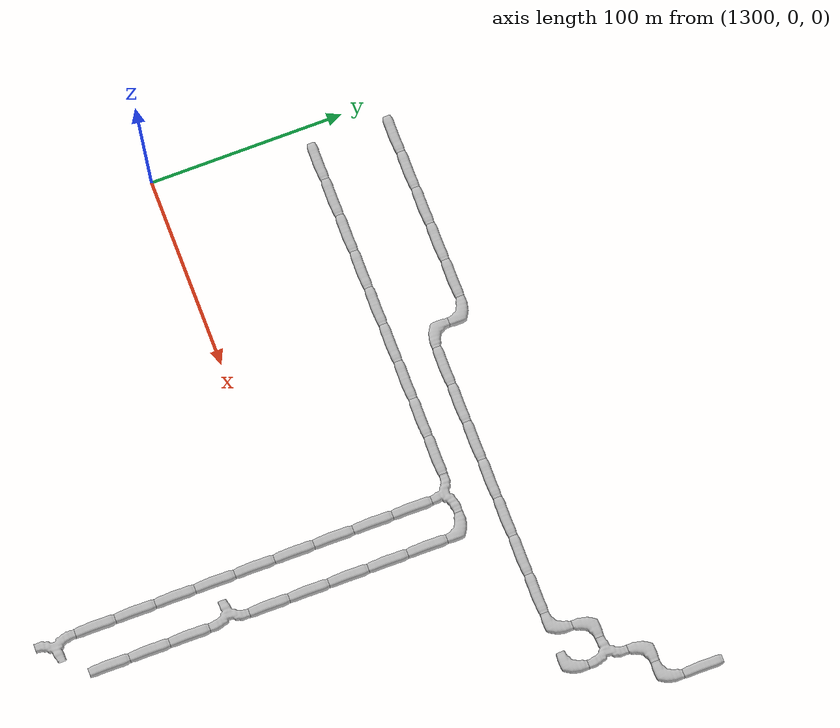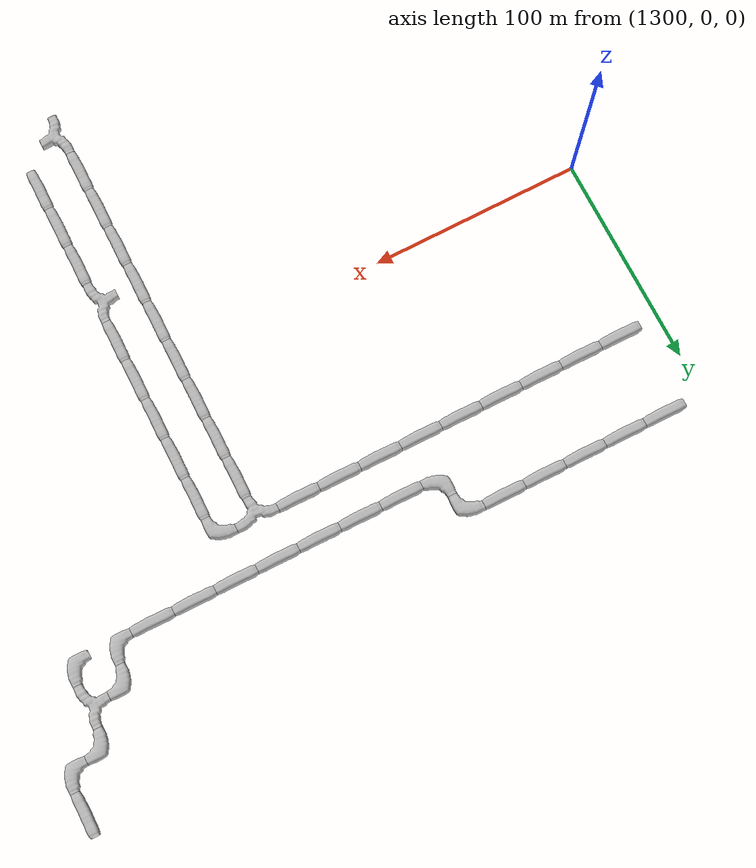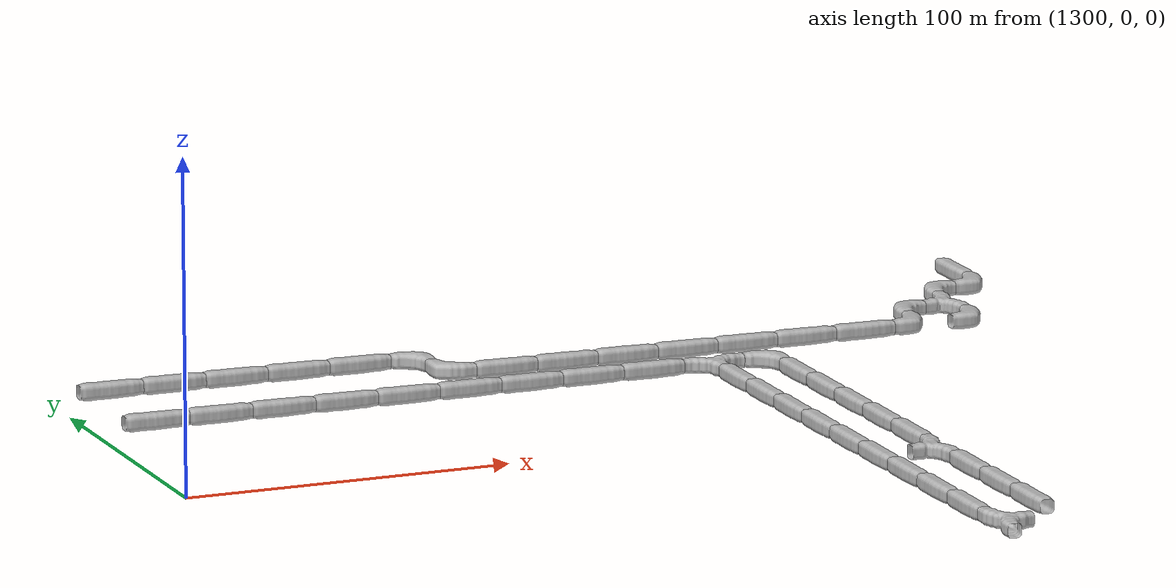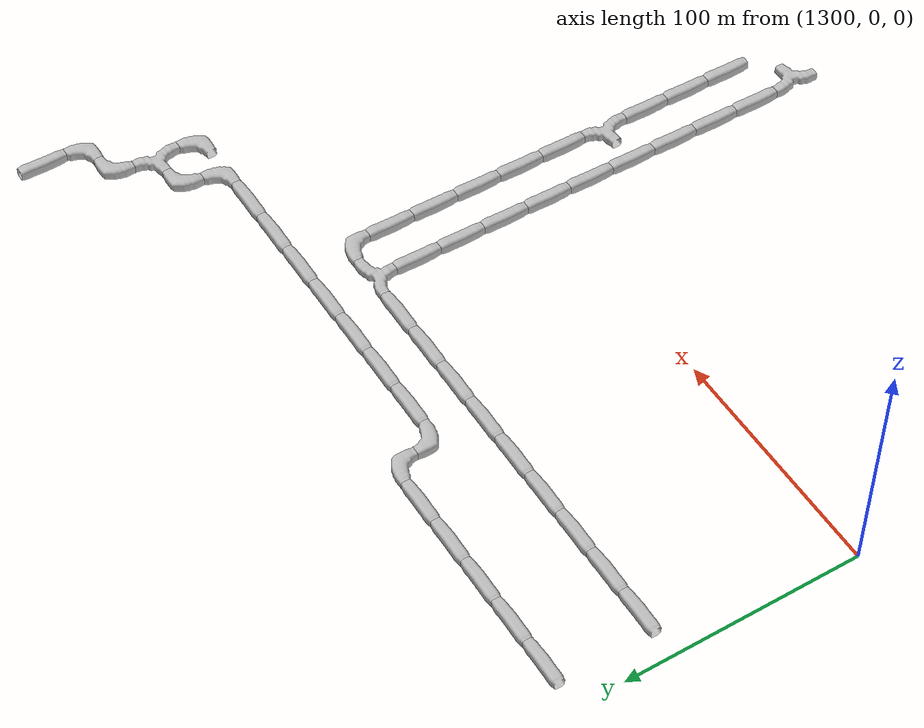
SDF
<sdf version="1.6">
 <world name="cave_8000_2">
  <include>
   <static>true</static>
   <name>cave_66_4</name>
   <pose>1320 80 0 0 0 1.5707963267948966</pose>
   <uri>model://cave_straight_20m</uri>
  </include>
  <include>
   <static>true</static>
   <name>cave_67_4</name>
   <pose>1340 80 0 0 0 1.5707963267948966</pose>
   <uri>model://cave_straight_20m</uri>
  </include>
  <include>
   <static>true</static>
   <name>cave_68_4</name>
   <pose>1360 80 0 0 0 1.5707963267948966</pose>
   <uri>model://cave_straight_20m</uri>
  </include>
  <include>
   <static>true</static>
   <name>cave_69_4</name>
   <pose>1380 80 0 0 0 1.5707963267948966</pose>
   <uri>model://cave_straight_20m</uri>
  </include>
  <include>
   <static>true</static>
   <name>cave_70_4</name>
   <pose>1400 80 0 0 0 1.5707963267948966</pose>
   <uri>model://cave_straight_20m</uri>
  </include>
  <include>
   <static>true</static>
   <name>cave_71_4</name>
   <pose>1420 80 0 0 0 1.5707963267948966</pose>
   <uri>model://cave_straight_20m</uri>
  </include>
  <include>
   <static>true</static>
   <name>cave_72_4</name>
   <pose>1440 80 0 0 0 1.5707963267948966</pose>
   <uri>model://cave_straight_20m</uri>
  </include>
  <include>
   <static>true</static>
   <name>cave_73_4</name>
   <pose>1460 80 0 0 0 1.5707963267948966</pose>
   <uri>model://cave_straight_20m</uri>
  </include>
  <include>
   <static>true</static>
   <name>cave_74_4</name>
   <pose>1480 80 0 0 0 1.5707963267948966</pose>
   <uri>model://cave_straight_20m</uri>
  </include>
  <include>
   <static>true</static>
   <name>cave_75_4</name>
   <pose>1500 80 0 0 0 3.141592653589793</pose>
   <uri>model://cave_3way_20m</uri>
  </include>
  <include>
   <static>true</static>
   <name>cave_76_4</name>
   <pose>1520 80 0 0 0 3.141592653589793</pose>
   <uri>model://cave_L_20m</uri>
  </include>
  <include>
   <static>true</static>
   <name>cave_76_3</name>
   <pose>1520 60 0 0 0 0.0</pose>
   <uri>model://cave_straight_20m</uri>
  </include>
  <include>
   <static>true</static>
   <name>cave_76_2</name>
   <pose>1520 40 0 0 0 0.0</pose>
   <uri>model://cave_straight_20m</uri>
  </include>
  <include>
   <static>true</static>
   <name>cave_76_1</name>
   <pose>1520 20 0 0 0 0.0</pose>
   <uri>model://cave_straight_20m</uri>
  </include>
  <include>
   <static>true</static>
   <name>cave_76_0</name>
   <pose>1520 0 0 0 0 0.0</pose>
   <uri>model://cave_straight_20m</uri>
  </include>
  <include>
   <static>true</static>
   <name>cave_76_-1</name>
   <pose>1520 -20 0 0 0 0.0</pose>
   <uri>model://cave_straight_20m</uri>
  </include>
  <include>
   <static>true</static>
   <name>cave_76_-2</name>
   <pose>1520 -40 0 0 0 1.5707963267948966</pose>
   <uri>model://cave_3way_20m</uri>
  </include>
  <include>
   <static>true</static>
   <name>cave_76_-3</name>
   <pose>1520 -60 0 0 0 0.0</pose>
   <uri>model://cave_straight_20m</uri>
  </include>
  <include>
   <static>true</static>
   <name>cave_76_-4</name>
   <pose>1520 -80 0 0 0 0.0</pose>
   <uri>model://cave_straight_20m</uri>
  </include>
  <include>
   <static>true</static>
   <name>cave_76_-5</name>
   <pose>1520 -100 0 0 0 0.0</pose>
   <uri>model://cave_straight_20m</uri>
  </include>
  <include>
   <static>true</static>
   <name>cave_75_3</name>
   <pose>1500 60 0 0 0 0.0</pose>
   <uri>model://cave_straight_20m</uri>
  </include>
  <include>
   <static>true</static>
   <name>cave_75_2</name>
   <pose>1500 40 0 0 0 0.0</pose>
   <uri>model://cave_straight_20m</uri>
  </include>
  <include>
   <static>true</static>
   <name>cave_75_1</name>
   <pose>1500 20 0 0 0 0.0</pose>
   <uri>model://cave_straight_20m</uri>
  </include>
  <include>
   <static>true</static>
   <name>cave_75_0</name>
   <pose>1500 0 0 0 0 0.0</pose>
   <uri>model://cave_straight_20m</uri>
  </include>
  <include>
   <static>true</static>
   <name>cave_75_-1</name>
   <pose>1500 -20 0 0 0 0.0</pose>
   <uri>model://cave_straight_20m</uri>
  </include>
  <include>
   <static>true</static>
   <name>cave_75_-2</name>
   <pose>1500 -40 0 0 0 0.0</pose>
   <uri>model://cave_straight_20m</uri>
  </include>
  <include>
   <static>true</static>
   <name>cave_75_-3</name>
   <pose>1500 -60 0 0 0 0.0</pose>
   <uri>model://cave_straight_20m</uri>
  </include>
  <include>
   <static>true</static>
   <name>cave_75_-4</name>
   <pose>1500 -80 0 0 0 0.0</pose>
   <uri>model://cave_straight_20m</uri>
  </include>
  <include>
   <static>true</static>
   <name>cave_75_-5</name>
   <pose>1500 -100 0 0 0 0.0</pose>
   <uri>model://cave_straight_20m</uri>
  </include>
  <include>
   <static>true</static>
   <name>cave_75_-6</name>
   <pose>1500 -120 0 0 0 -1.5707963267948966</pose>
   <uri>model://cave_3way_20m</uri>
  </include>
  <include>
   <static>true</static>
   <name>cave_66_6</name>
   <pose>1320 120 0 0 0 1.5707963267948966</pose>
   <uri>model://cave_straight_20m</uri>
  </include>
  <include>
   <static>true</static>
   <name>cave_67_6</name>
   <pose>1340 120 0 0 0 1.5707963267948966</pose>
   <uri>model://cave_straight_20m</uri>
  </include>
  <include>
   <static>true</static>
   <name>cave_68_6</name>
   <pose>1360 120 0 0 0 1.5707963267948966</pose>
   <uri>model://cave_straight_20m</uri>
  </include>
  <include>
   <static>true</static>
   <name>cave_69_6</name>
   <pose>1380 120 0 0 0 1.5707963267948966</pose>
   <uri>model://cave_straight_20m</uri>
  </include>
  <include>
   <static>true</static>
   <name>cave_70_6</name>
   <pose>1400 120 0 0 0 1.5707963267948966</pose>
   <uri>model://cave_straight_20m</uri>
  </include>
  <include>
   <static>true</static>
   <name>cave_71_6</name>
   <pose>1420 120 0 0 0 3.141592653589793</pose>
   <uri>model://cave_L_20m</uri>
  </include>
  <include>
   <static>true</static>
   <name>cave_71_5</name>
   <pose>1420 100 0 0 0 0.0</pose>
   <uri>model://cave_L_20m</uri>
  </include>
  <include>
   <static>true</static>
   <name>cave_72_5</name>
   <pose>1440 100 0 0 0 1.5707963267948966</pose>
   <uri>model://cave_straight_20m</uri>
  </include>
  <include>
   <static>true</static>
   <name>cave_73_5</name>
   <pose>1460 100 0 0 0 1.5707963267948966</pose>
   <uri>model://cave_straight_20m</uri>
  </include>
  <include>
   <static>true</static>
   <name>cave_74_5</name>
   <pose>1480 100 0 0 0 1.5707963267948966</pose>
   <uri>model://cave_straight_20m</uri>
  </include>
  <include>
   <static>true</static>
   <name>cave_75_5</name>
   <pose>1500 100 0 0 0 1.5707963267948966</pose>
   <uri>model://cave_straight_20m</uri>
  </include>
  <include>
   <static>true</static>
   <name>cave_76_5</name>
   <pose>1520 100 0 0 0 1.5707963267948966</pose>
   <uri>model://cave_straight_20m</uri>
  </include>
  <include>
   <static>true</static>
   <name>cave_77_5</name>
   <pose>1540 100 0 0 0 1.5707963267948966</pose>
   <uri>model://cave_straight_20m</uri>
  </include>
  <include>
   <static>true</static>
   <name>cave_78_5</name>
   <pose>1560 100 0 0 0 1.5707963267948966</pose>
   <uri>model://cave_straight_20m</uri>
  </include>
  <include>
   <static>true</static>
   <name>cave_79_5</name>
   <pose>1580 100 0 0 0 1.5707963267948966</pose>
   <uri>model://cave_L_20m</uri>
  </include>
  <include>
   <static>true</static>
   <name>cave_79_6</name>
   <pose>1580 120 0 0 0 -1.5707963267948966</pose>
   <uri>model://cave_L_20m</uri>
  </include>
  <include>
   <static>true</static>
   <name>cave_80_6</name>
   <pose>1600 120 0 0 0 1.5707963267948966</pose>
   <uri>model://cave_3way_20m</uri>
  </include>
  <include>
   <static>true</static>
   <name>cave_80_5</name>
   <pose>1600 100 0 0 0 1.5707963267948966</pose>
   <uri>model://cave_L_20m</uri>
  </include>
  <include>
   <static>true</static>
   <name>cave_80_7</name>
   <pose>1600 140 0 0 0 -1.5707963267948966</pose>
   <uri>model://cave_L_20m</uri>
  </include>
  <include>
   <static>true</static>
   <name>cave_81_7</name>
   <pose>1620 140 0 0 0 1.5707963267948966</pose>
   <uri>model://cave_L_20m</uri>
  </include>
  <include>
   <static>true</static>
   <name>cave_81_8</name>
   <pose>1620 160 0 0 0 0.0</pose>
   <uri>model://cave_straight_20m</uri>
  </include>
 </world>
</sdf>
